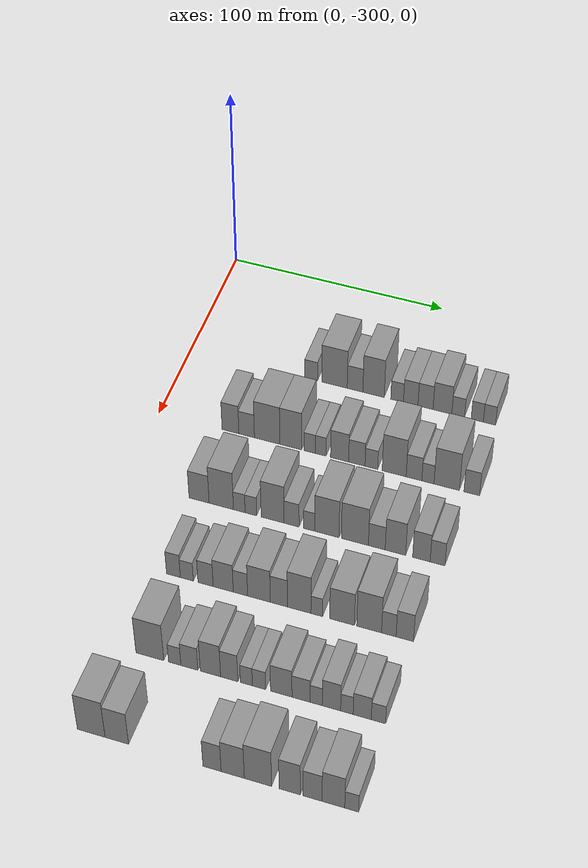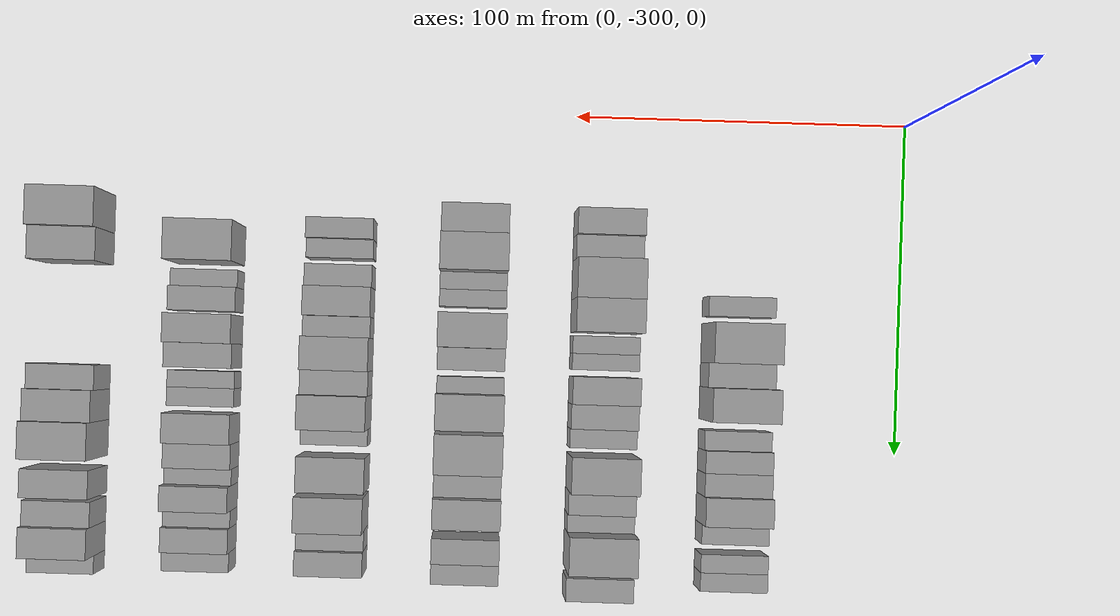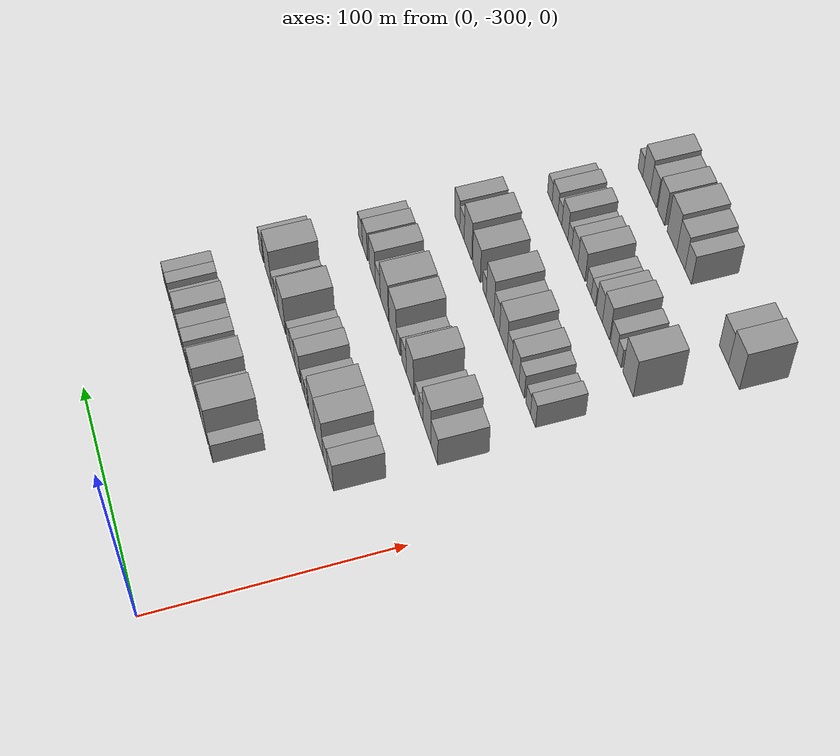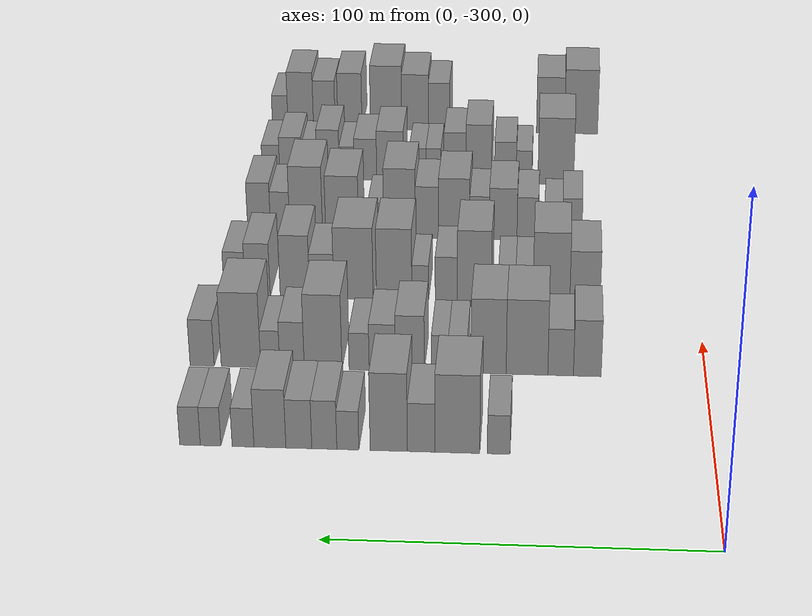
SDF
<sdf version="1.6">
 <world name="default">
  <model name="building_41">
   <static>1</static>
   <pose>50.0000 -243.2245 0 0.000000 0.000000 0.000000</pose>
   <link name="link">
    <pose>0 0 6.00 0 0 0</pose>
    <collision name="collision"><geometry><box><size>20.0000 5.9656 12.0000</size></box></geometry></collision>
    <visual name="visual">
     <cast_shadows>0</cast_shadows>
     <geometry><box><size>20.0000 5.9656 12.0000</size></box></geometry>
     <material>
      <script>
       <uri>model://grey_wall/materials/scripts</uri>
       <uri>model://grey_wall/materials/textures</uri>
       <name>vrc/grey_wall</name>
      </script>
     </material>
    </visual>
   </link>
  </model>
  <model name="building_42">
   <static>1</static>
   <pose>50.0000 -232.3315 0 0.000000 0.000000 0.000000</pose>
   <link name="link">
    <pose>0 0 12.00 0 0 0</pose>
    <collision name="collision"><geometry><box><size>20.0000 11.8202 24.0000</size></box></geometry></collision>
    <visual name="visual">
     <cast_shadows>0</cast_shadows>
     <geometry><box><size>20.0000 11.8202 24.0000</size></box></geometry>
     <material>
      <script>
       <uri>model://grey_wall/materials/scripts</uri>
       <uri>model://grey_wall/materials/textures</uri>
       <name>vrc/grey_wall</name>
      </script>
     </material>
    </visual>
   </link>
  </model>
  <model name="building_43">
   <static>1</static>
   <pose>50.0000 -222.7907 0 0.000000 0.000000 0.000000</pose>
   <link name="link">
    <pose>0 0 7.50 0 0 0</pose>
    <collision name="collision"><geometry><box><size>20.0000 7.2614 15.0000</size></box></geometry></collision>
    <visual name="visual">
     <cast_shadows>0</cast_shadows>
     <geometry><box><size>20.0000 7.2614 15.0000</size></box></geometry>
     <material>
      <script>
       <uri>model://grey_wall/materials/scripts</uri>
       <uri>model://grey_wall/materials/textures</uri>
       <name>vrc/grey_wall</name>
      </script>
     </material>
    </visual>
   </link>
  </model>
  <model name="building_44">
   <static>1</static>
   <pose>50.0000 -214.2294 0 0.000000 0.000000 0.000000</pose>
   <link name="link">
    <pose>0 0 12.00 0 0 0</pose>
    <collision name="collision"><geometry><box><size>20.0000 9.8612 24.0000</size></box></geometry></collision>
    <visual name="visual">
     <cast_shadows>0</cast_shadows>
     <geometry><box><size>20.0000 9.8612 24.0000</size></box></geometry>
     <material>
      <script>
       <uri>model://grey_wall/materials/scripts</uri>
       <uri>model://grey_wall/materials/textures</uri>
       <name>vrc/grey_wall</name>
      </script>
     </material>
    </visual>
   </link>
  </model>
  <model name="building_45">
   <static>1</static>
   <pose>50.0000 -203.3863 0 0.000000 0.000000 0.000000</pose>
   <link name="link">
    <pose>0 0 6.00 0 0 0</pose>
    <collision name="collision"><geometry><box><size>20.0000 5.8248 12.0000</size></box></geometry></collision>
    <visual name="visual">
     <cast_shadows>0</cast_shadows>
     <geometry><box><size>20.0000 5.8248 12.0000</size></box></geometry>
     <material>
      <script>
       <uri>model://grey_wall/materials/scripts</uri>
       <uri>model://grey_wall/materials/textures</uri>
       <name>vrc/grey_wall</name>
      </script>
     </material>
    </visual>
   </link>
  </model>
  <model name="building_46">
   <static>1</static>
   <pose>50.0000 -197.1510 0 0.000000 0.000000 0.000000</pose>
   <link name="link">
    <pose>0 0 7.50 0 0 0</pose>
    <collision name="collision"><geometry><box><size>20.0000 6.6458 15.0000</size></box></geometry></collision>
    <visual name="visual">
     <cast_shadows>0</cast_shadows>
     <geometry><box><size>20.0000 6.6458 15.0000</size></box></geometry>
     <material>
      <script>
       <uri>model://grey_wall/materials/scripts</uri>
       <uri>model://grey_wall/materials/textures</uri>
       <name>vrc/grey_wall</name>
      </script>
     </material>
    </visual>
   </link>
  </model>
  <model name="building_47">
   <static>1</static>
   <pose>50.0000 -190.3913 0 0.000000 0.000000 0.000000</pose>
   <link name="link">
    <pose>0 0 7.50 0 0 0</pose>
    <collision name="collision"><geometry><box><size>20.0000 6.8738 15.0000</size></box></geometry></collision>
    <visual name="visual">
     <cast_shadows>0</cast_shadows>
     <geometry><box><size>20.0000 6.8738 15.0000</size></box></geometry>
     <material>
      <script>
       <uri>model://grey_wall/materials/scripts</uri>
       <uri>model://grey_wall/materials/textures</uri>
       <name>vrc/grey_wall</name>
      </script>
     </material>
    </visual>
   </link>
  </model>
  <model name="building_48">
   <static>1</static>
   <pose>50.0000 -182.7068 0 0.000000 0.000000 0.000000</pose>
   <link name="link">
    <pose>0 0 9.00 0 0 0</pose>
    <collision name="collision"><geometry><box><size>20.0000 8.4952 18.0000</size></box></geometry></collision>
    <visual name="visual">
     <cast_shadows>0</cast_shadows>
     <geometry><box><size>20.0000 8.4952 18.0000</size></box></geometry>
     <material>
      <script>
       <uri>model://grey_wall/materials/scripts</uri>
       <uri>model://grey_wall/materials/textures</uri>
       <name>vrc/grey_wall</name>
      </script>
     </material>
    </visual>
   </link>
  </model>
  <model name="building_49">
   <static>1</static>
   <pose>50.0000 -175.5505 0 0.000000 0.000000 0.000000</pose>
   <link name="link">
    <pose>0 0 6.00 0 0 0</pose>
    <collision name="collision"><geometry><box><size>20.0000 5.8174 12.0000</size></box></geometry></collision>
    <visual name="visual">
     <cast_shadows>0</cast_shadows>
     <geometry><box><size>20.0000 5.8174 12.0000</size></box></geometry>
     <material>
      <script>
       <uri>model://grey_wall/materials/scripts</uri>
       <uri>model://grey_wall/materials/textures</uri>
       <name>vrc/grey_wall</name>
      </script>
     </material>
    </visual>
   </link>
  </model>
  <model name="building_50">
   <static>1</static>
   <pose>50.0000 -166.8964 0 0.000000 0.000000 0.000000</pose>
   <link name="link">
    <pose>0 0 6.00 0 0 0</pose>
    <collision name="collision"><geometry><box><size>20.0000 5.4906 12.0000</size></box></geometry></collision>
    <visual name="visual">
     <cast_shadows>0</cast_shadows>
     <geometry><box><size>20.0000 5.4906 12.0000</size></box></geometry>
     <material>
      <script>
       <uri>model://grey_wall/materials/scripts</uri>
       <uri>model://grey_wall/materials/textures</uri>
       <name>vrc/grey_wall</name>
      </script>
     </material>
    </visual>
   </link>
  </model>
  <model name="building_51">
   <static>1</static>
   <pose>50.0000 -161.4066 0 0.000000 0.000000 0.000000</pose>
   <link name="link">
    <pose>0 0 6.00 0 0 0</pose>
    <collision name="collision"><geometry><box><size>20.0000 5.4890 12.0000</size></box></geometry></collision>
    <visual name="visual">
     <cast_shadows>0</cast_shadows>
     <geometry><box><size>20.0000 5.4890 12.0000</size></box></geometry>
     <material>
      <script>
       <uri>model://grey_wall/materials/scripts</uri>
       <uri>model://grey_wall/materials/textures</uri>
       <name>vrc/grey_wall</name>
      </script>
     </material>
    </visual>
   </link>
  </model>
  <model name="building_180">
   <static>1</static>
   <pose>90.0000 -266.7955 0 0.000000 0.000000 0.000000</pose>
   <link name="link">
    <pose>0 0 9.00 0 0 0</pose>
    <collision name="collision"><geometry><box><size>20.0000 7.7450 18.0000</size></box></geometry></collision>
    <visual name="visual">
     <cast_shadows>0</cast_shadows>
     <geometry><box><size>20.0000 7.7450 18.0000</size></box></geometry>
     <material>
      <script>
       <uri>model://grey_wall/materials/scripts</uri>
       <uri>model://grey_wall/materials/textures</uri>
       <name>vrc/grey_wall</name>
      </script>
     </material>
    </visual>
   </link>
  </model>
  <model name="building_181">
   <static>1</static>
   <pose>90.0000 -259.3397 0 0.000000 0.000000 0.000000</pose>
   <link name="link">
    <pose>0 0 7.50 0 0 0</pose>
    <collision name="collision"><geometry><box><size>20.0000 7.1667 15.0000</size></box></geometry></collision>
    <visual name="visual">
     <cast_shadows>0</cast_shadows>
     <geometry><box><size>20.0000 7.1667 15.0000</size></box></geometry>
     <material>
      <script>
       <uri>model://grey_wall/materials/scripts</uri>
       <uri>model://grey_wall/materials/textures</uri>
       <name>vrc/grey_wall</name>
      </script>
     </material>
    </visual>
   </link>
  </model>
  <model name="building_182">
   <static>1</static>
   <pose>90.0000 -249.9329 0 0.000000 0.000000 0.000000</pose>
   <link name="link">
    <pose>0 0 12.00 0 0 0</pose>
    <collision name="collision"><geometry><box><size>20.0000 11.6470 24.0000</size></box></geometry></collision>
    <visual name="visual">
     <cast_shadows>0</cast_shadows>
     <geometry><box><size>20.0000 11.6470 24.0000</size></box></geometry>
     <material>
      <script>
       <uri>model://grey_wall/materials/scripts</uri>
       <uri>model://grey_wall/materials/textures</uri>
       <name>vrc/grey_wall</name>
      </script>
     </material>
    </visual>
   </link>
  </model>
  <model name="building_183">
   <static>1</static>
   <pose>90.0000 -239.1637 0 0.000000 0.000000 0.000000</pose>
   <link name="link">
    <pose>0 0 12.00 0 0 0</pose>
    <collision name="collision"><geometry><box><size>20.0000 9.8913 24.0000</size></box></geometry></collision>
    <visual name="visual">
     <cast_shadows>0</cast_shadows>
     <geometry><box><size>20.0000 9.8913 24.0000</size></box></geometry>
     <material>
      <script>
       <uri>model://grey_wall/materials/scripts</uri>
       <uri>model://grey_wall/materials/textures</uri>
       <name>vrc/grey_wall</name>
      </script>
     </material>
    </visual>
   </link>
  </model>
  <model name="building_184">
   <static>1</static>
   <pose>90.0000 -230.5788 0 0.000000 0.000000 0.000000</pose>
   <link name="link">
    <pose>0 0 6.00 0 0 0</pose>
    <collision name="collision"><geometry><box><size>20.0000 5.2786 12.0000</size></box></geometry></collision>
    <visual name="visual">
     <cast_shadows>0</cast_shadows>
     <geometry><box><size>20.0000 5.2786 12.0000</size></box></geometry>
     <material>
      <script>
       <uri>model://grey_wall/materials/scripts</uri>
       <uri>model://grey_wall/materials/textures</uri>
       <name>vrc/grey_wall</name>
      </script>
     </material>
    </visual>
   </link>
  </model>
  <model name="building_185">
   <static>1</static>
   <pose>90.0000 -225.5299 0 0.000000 0.000000 0.000000</pose>
   <link name="link">
    <pose>0 0 6.00 0 0 0</pose>
    <collision name="collision"><geometry><box><size>20.0000 4.8191 12.0000</size></box></geometry></collision>
    <visual name="visual">
     <cast_shadows>0</cast_shadows>
     <geometry><box><size>20.0000 4.8191 12.0000</size></box></geometry>
     <material>
      <script>
       <uri>model://grey_wall/materials/scripts</uri>
       <uri>model://grey_wall/materials/textures</uri>
       <name>vrc/grey_wall</name>
      </script>
     </material>
    </visual>
   </link>
  </model>
  <model name="building_186">
   <static>1</static>
   <pose>90.0000 -217.0432 0 0.000000 0.000000 0.000000</pose>
   <link name="link">
    <pose>0 0 9.00 0 0 0</pose>
    <collision name="collision"><geometry><box><size>20.0000 8.1545 18.0000</size></box></geometry></collision>
    <visual name="visual">
     <cast_shadows>0</cast_shadows>
     <geometry><box><size>20.0000 8.1545 18.0000</size></box></geometry>
     <material>
      <script>
       <uri>model://grey_wall/materials/scripts</uri>
       <uri>model://grey_wall/materials/textures</uri>
       <name>vrc/grey_wall</name>
      </script>
     </material>
    </visual>
   </link>
  </model>
  <model name="building_187">
   <static>1</static>
   <pose>90.0000 -209.2895 0 0.000000 0.000000 0.000000</pose>
   <link name="link">
    <pose>0 0 7.50 0 0 0</pose>
    <collision name="collision"><geometry><box><size>20.0000 7.3528 15.0000</size></box></geometry></collision>
    <visual name="visual">
     <cast_shadows>0</cast_shadows>
     <geometry><box><size>20.0000 7.3528 15.0000</size></box></geometry>
     <material>
      <script>
       <uri>model://grey_wall/materials/scripts</uri>
       <uri>model://grey_wall/materials/textures</uri>
       <name>vrc/grey_wall</name>
      </script>
     </material>
    </visual>
   </link>
  </model>
  <model name="building_188">
   <static>1</static>
   <pose>90.0000 -202.7772 0 0.000000 0.000000 0.000000</pose>
   <link name="link">
    <pose>0 0 6.00 0 0 0</pose>
    <collision name="collision"><geometry><box><size>20.0000 5.6718 12.0000</size></box></geometry></collision>
    <visual name="visual">
     <cast_shadows>0</cast_shadows>
     <geometry><box><size>20.0000 5.6718 12.0000</size></box></geometry>
     <material>
      <script>
       <uri>model://grey_wall/materials/scripts</uri>
       <uri>model://grey_wall/materials/textures</uri>
       <name>vrc/grey_wall</name>
      </script>
     </material>
    </visual>
   </link>
  </model>
  <model name="building_189">
   <static>1</static>
   <pose>90.0000 -192.6108 0 0.000000 0.000000 0.000000</pose>
   <link name="link">
    <pose>0 0 12.00 0 0 0</pose>
    <collision name="collision"><geometry><box><size>20.0000 10.6610 24.0000</size></box></geometry></collision>
    <visual name="visual">
     <cast_shadows>0</cast_shadows>
     <geometry><box><size>20.0000 10.6610 24.0000</size></box></geometry>
     <material>
      <script>
       <uri>model://grey_wall/materials/scripts</uri>
       <uri>model://grey_wall/materials/textures</uri>
       <name>vrc/grey_wall</name>
      </script>
     </material>
    </visual>
   </link>
  </model>
  <model name="building_190">
   <static>1</static>
   <pose>90.0000 -183.8102 0 0.000000 0.000000 0.000000</pose>
   <link name="link">
    <pose>0 0 7.50 0 0 0</pose>
    <collision name="collision"><geometry><box><size>20.0000 6.9402 15.0000</size></box></geometry></collision>
    <visual name="visual">
     <cast_shadows>0</cast_shadows>
     <geometry><box><size>20.0000 6.9402 15.0000</size></box></geometry>
     <material>
      <script>
       <uri>model://grey_wall/materials/scripts</uri>
       <uri>model://grey_wall/materials/textures</uri>
       <name>vrc/grey_wall</name>
      </script>
     </material>
    </visual>
   </link>
  </model>
  <model name="building_191">
   <static>1</static>
   <pose>90.0000 -177.6472 0 0.000000 0.000000 0.000000</pose>
   <link name="link">
    <pose>0 0 6.00 0 0 0</pose>
    <collision name="collision"><geometry><box><size>20.0000 5.3858 12.0000</size></box></geometry></collision>
    <visual name="visual">
     <cast_shadows>0</cast_shadows>
     <geometry><box><size>20.0000 5.3858 12.0000</size></box></geometry>
     <material>
      <script>
       <uri>model://grey_wall/materials/scripts</uri>
       <uri>model://grey_wall/materials/textures</uri>
       <name>vrc/grey_wall</name>
      </script>
     </material>
    </visual>
   </link>
  </model>
  <model name="building_192">
   <static>1</static>
   <pose>90.0000 -169.3589 0 0.000000 0.000000 0.000000</pose>
   <link name="link">
    <pose>0 0 12.00 0 0 0</pose>
    <collision name="collision"><geometry><box><size>20.0000 11.1908 24.0000</size></box></geometry></collision>
    <visual name="visual">
     <cast_shadows>0</cast_shadows>
     <geometry><box><size>20.0000 11.1908 24.0000</size></box></geometry>
     <material>
      <script>
       <uri>model://grey_wall/materials/scripts</uri>
       <uri>model://grey_wall/materials/textures</uri>
       <name>vrc/grey_wall</name>
      </script>
     </material>
    </visual>
   </link>
  </model>
  <model name="building_193">
   <static>1</static>
   <pose>90.0000 -158.3385 0 0.000000 0.000000 0.000000</pose>
   <link name="link">
    <pose>0 0 7.50 0 0 0</pose>
    <collision name="collision"><geometry><box><size>20.0000 6.8500 15.0000</size></box></geometry></collision>
    <visual name="visual">
     <cast_shadows>0</cast_shadows>
     <geometry><box><size>20.0000 6.8500 15.0000</size></box></geometry>
     <material>
      <script>
       <uri>model://grey_wall/materials/scripts</uri>
       <uri>model://grey_wall/materials/textures</uri>
       <name>vrc/grey_wall</name>
      </script>
     </material>
    </visual>
   </link>
  </model>
  <model name="building_321">
   <static>1</static>
   <pose>130.0000 -266.3626 0 0.000000 0.000000 0.000000</pose>
   <link name="link">
    <pose>0 0 9.00 0 0 0</pose>
    <collision name="collision"><geometry><box><size>20.0000 8.9956 18.0000</size></box></geometry></collision>
    <visual name="visual">
     <cast_shadows>0</cast_shadows>
     <geometry><box><size>20.0000 8.9956 18.0000</size></box></geometry>
     <material>
      <script>
       <uri>model://grey_wall/materials/scripts</uri>
       <uri>model://grey_wall/materials/textures</uri>
       <name>vrc/grey_wall</name>
      </script>
     </material>
    </visual>
   </link>
  </model>
  <model name="building_322">
   <static>1</static>
   <pose>130.0000 -256.4152 0 0.000000 0.000000 0.000000</pose>
   <link name="link">
    <pose>0 0 12.00 0 0 0</pose>
    <collision name="collision"><geometry><box><size>20.0000 10.8993 24.0000</size></box></geometry></collision>
    <visual name="visual">
     <cast_shadows>0</cast_shadows>
     <geometry><box><size>20.0000 10.8993 24.0000</size></box></geometry>
     <material>
      <script>
       <uri>model://grey_wall/materials/scripts</uri>
       <uri>model://grey_wall/materials/textures</uri>
       <name>vrc/grey_wall</name>
      </script>
     </material>
    </visual>
   </link>
  </model>
  <model name="building_323">
   <static>1</static>
   <pose>130.0000 -248.3699 0 0.000000 0.000000 0.000000</pose>
   <link name="link">
    <pose>0 0 6.00 0 0 0</pose>
    <collision name="collision"><geometry><box><size>20.0000 5.1913 12.0000</size></box></geometry></collision>
    <visual name="visual">
     <cast_shadows>0</cast_shadows>
     <geometry><box><size>20.0000 5.1913 12.0000</size></box></geometry>
     <material>
      <script>
       <uri>model://grey_wall/materials/scripts</uri>
       <uri>model://grey_wall/materials/textures</uri>
       <name>vrc/grey_wall</name>
      </script>
     </material>
    </visual>
   </link>
  </model>
  <model name="building_324">
   <static>1</static>
   <pose>130.0000 -243.2069 0 0.000000 0.000000 0.000000</pose>
   <link name="link">
    <pose>0 0 6.00 0 0 0</pose>
    <collision name="collision"><geometry><box><size>20.0000 5.1347 12.0000</size></box></geometry></collision>
    <visual name="visual">
     <cast_shadows>0</cast_shadows>
     <geometry><box><size>20.0000 5.1347 12.0000</size></box></geometry>
     <material>
      <script>
       <uri>model://grey_wall/materials/scripts</uri>
       <uri>model://grey_wall/materials/textures</uri>
       <name>vrc/grey_wall</name>
      </script>
     </material>
    </visual>
   </link>
  </model>
  <model name="building_325">
   <static>1</static>
   <pose>130.0000 -233.5717 0 0.000000 0.000000 0.000000</pose>
   <link name="link">
    <pose>0 0 12.00 0 0 0</pose>
    <collision name="collision"><geometry><box><size>20.0000 10.1357 24.0000</size></box></geometry></collision>
    <visual name="visual">
     <cast_shadows>0</cast_shadows>
     <geometry><box><size>20.0000 10.1357 24.0000</size></box></geometry>
     <material>
      <script>
       <uri>model://grey_wall/materials/scripts</uri>
       <uri>model://grey_wall/materials/textures</uri>
       <name>vrc/grey_wall</name>
      </script>
     </material>
    </visual>
   </link>
  </model>
  <model name="building_326">
   <static>1</static>
   <pose>130.0000 -225.1940 0 0.000000 0.000000 0.000000</pose>
   <link name="link">
    <pose>0 0 7.50 0 0 0</pose>
    <collision name="collision"><geometry><box><size>20.0000 6.6199 15.0000</size></box></geometry></collision>
    <visual name="visual">
     <cast_shadows>0</cast_shadows>
     <geometry><box><size>20.0000 6.6199 15.0000</size></box></geometry>
     <material>
      <script>
       <uri>model://grey_wall/materials/scripts</uri>
       <uri>model://grey_wall/materials/textures</uri>
       <name>vrc/grey_wall</name>
      </script>
     </material>
    </visual>
   </link>
  </model>
  <model name="building_327">
   <static>1</static>
   <pose>130.0000 -217.4072 0 0.000000 0.000000 0.000000</pose>
   <link name="link">
    <pose>0 0 6.00 0 0 0</pose>
    <collision name="collision"><geometry><box><size>20.0000 4.9537 12.0000</size></box></geometry></collision>
    <visual name="visual">
     <cast_shadows>0</cast_shadows>
     <geometry><box><size>20.0000 4.9537 12.0000</size></box></geometry>
     <material>
      <script>
       <uri>model://grey_wall/materials/scripts</uri>
       <uri>model://grey_wall/materials/textures</uri>
       <name>vrc/grey_wall</name>
      </script>
     </material>
    </visual>
   </link>
  </model>
  <model name="building_328">
   <static>1</static>
   <pose>130.0000 -209.6486 0 0.000000 0.000000 0.000000</pose>
   <link name="link">
    <pose>0 0 12.00 0 0 0</pose>
    <collision name="collision"><geometry><box><size>20.0000 10.5635 24.0000</size></box></geometry></collision>
    <visual name="visual">
     <cast_shadows>0</cast_shadows>
     <geometry><box><size>20.0000 10.5635 24.0000</size></box></geometry>
     <material>
      <script>
       <uri>model://grey_wall/materials/scripts</uri>
       <uri>model://grey_wall/materials/textures</uri>
       <name>vrc/grey_wall</name>
      </script>
     </material>
    </visual>
   </link>
  </model>
  <model name="building_329">
   <static>1</static>
   <pose>130.0000 -197.4934 0 0.000000 0.000000 0.000000</pose>
   <link name="link">
    <pose>0 0 12.00 0 0 0</pose>
    <collision name="collision"><geometry><box><size>20.0000 11.7470 24.0000</size></box></geometry></collision>
    <visual name="visual">
     <cast_shadows>0</cast_shadows>
     <geometry><box><size>20.0000 11.7470 24.0000</size></box></geometry>
     <material>
      <script>
       <uri>model://grey_wall/materials/scripts</uri>
       <uri>model://grey_wall/materials/textures</uri>
       <name>vrc/grey_wall</name>
      </script>
     </material>
    </visual>
   </link>
  </model>
  <model name="building_330">
   <static>1</static>
   <pose>130.0000 -187.9831 0 0.000000 0.000000 0.000000</pose>
   <link name="link">
    <pose>0 0 7.50 0 0 0</pose>
    <collision name="collision"><geometry><box><size>20.0000 7.2736 15.0000</size></box></geometry></collision>
    <visual name="visual">
     <cast_shadows>0</cast_shadows>
     <geometry><box><size>20.0000 7.2736 15.0000</size></box></geometry>
     <material>
      <script>
       <uri>model://grey_wall/materials/scripts</uri>
       <uri>model://grey_wall/materials/textures</uri>
       <name>vrc/grey_wall</name>
      </script>
     </material>
    </visual>
   </link>
  </model>
  <model name="building_331">
   <static>1</static>
   <pose>130.0000 -179.9331 0 0.000000 0.000000 0.000000</pose>
   <link name="link">
    <pose>0 0 10.50 0 0 0</pose>
    <collision name="collision"><geometry><box><size>20.0000 8.8264 21.0000</size></box></geometry></collision>
    <visual name="visual">
     <cast_shadows>0</cast_shadows>
     <geometry><box><size>20.0000 8.8264 21.0000</size></box></geometry>
     <material>
      <script>
       <uri>model://grey_wall/materials/scripts</uri>
       <uri>model://grey_wall/materials/textures</uri>
       <name>vrc/grey_wall</name>
      </script>
     </material>
    </visual>
   </link>
  </model>
  <model name="building_332">
   <static>1</static>
   <pose>130.0000 -168.7784 0 0.000000 0.000000 0.000000</pose>
   <link name="link">
    <pose>0 0 9.00 0 0 0</pose>
    <collision name="collision"><geometry><box><size>20.0000 7.4831 18.0000</size></box></geometry></collision>
    <visual name="visual">
     <cast_shadows>0</cast_shadows>
     <geometry><box><size>20.0000 7.4831 18.0000</size></box></geometry>
     <material>
      <script>
       <uri>model://grey_wall/materials/scripts</uri>
       <uri>model://grey_wall/materials/textures</uri>
       <name>vrc/grey_wall</name>
      </script>
     </material>
    </visual>
   </link>
  </model>
  <model name="building_333">
   <static>1</static>
   <pose>130.0000 -161.8646 0 0.000000 0.000000 0.000000</pose>
   <link name="link">
    <pose>0 0 7.50 0 0 0</pose>
    <collision name="collision"><geometry><box><size>20.0000 6.3444 15.0000</size></box></geometry></collision>
    <visual name="visual">
     <cast_shadows>0</cast_shadows>
     <geometry><box><size>20.0000 6.3444 15.0000</size></box></geometry>
     <material>
      <script>
       <uri>model://grey_wall/materials/scripts</uri>
       <uri>model://grey_wall/materials/textures</uri>
       <name>vrc/grey_wall</name>
      </script>
     </material>
    </visual>
   </link>
  </model>
  <model name="building_460">
   <static>1</static>
   <pose>170.0000 -262.5869 0 0.000000 0.000000 0.000000</pose>
   <link name="link">
    <pose>0 0 7.50 0 0 0</pose>
    <collision name="collision"><geometry><box><size>20.0000 6.0507 15.0000</size></box></geometry></collision>
    <visual name="visual">
     <cast_shadows>0</cast_shadows>
     <geometry><box><size>20.0000 6.0507 15.0000</size></box></geometry>
     <material>
      <script>
       <uri>model://grey_wall/materials/scripts</uri>
       <uri>model://grey_wall/materials/textures</uri>
       <name>vrc/grey_wall</name>
      </script>
     </material>
    </visual>
   </link>
  </model>
  <model name="building_461">
   <static>1</static>
   <pose>170.0000 -256.7274 0 0.000000 0.000000 0.000000</pose>
   <link name="link">
    <pose>0 0 6.00 0 0 0</pose>
    <collision name="collision"><geometry><box><size>20.0000 5.6682 12.0000</size></box></geometry></collision>
    <visual name="visual">
     <cast_shadows>0</cast_shadows>
     <geometry><box><size>20.0000 5.6682 12.0000</size></box></geometry>
     <material>
      <script>
       <uri>model://grey_wall/materials/scripts</uri>
       <uri>model://grey_wall/materials/textures</uri>
       <name>vrc/grey_wall</name>
      </script>
     </material>
    </visual>
   </link>
  </model>
  <model name="building_462">
   <static>1</static>
   <pose>170.0000 -248.6005 0 0.000000 0.000000 0.000000</pose>
   <link name="link">
    <pose>0 0 7.50 0 0 0</pose>
    <collision name="collision"><geometry><box><size>20.0000 6.5857 15.0000</size></box></geometry></collision>
    <visual name="visual">
     <cast_shadows>0</cast_shadows>
     <geometry><box><size>20.0000 6.5857 15.0000</size></box></geometry>
     <material>
      <script>
       <uri>model://grey_wall/materials/scripts</uri>
       <uri>model://grey_wall/materials/textures</uri>
       <name>vrc/grey_wall</name>
      </script>
     </material>
    </visual>
   </link>
  </model>
  <model name="building_463">
   <static>1</static>
   <pose>170.0000 -240.9438 0 0.000000 0.000000 0.000000</pose>
   <link name="link">
    <pose>0 0 9.00 0 0 0</pose>
    <collision name="collision"><geometry><box><size>20.0000 8.7277 18.0000</size></box></geometry></collision>
    <visual name="visual">
     <cast_shadows>0</cast_shadows>
     <geometry><box><size>20.0000 8.7277 18.0000</size></box></geometry>
     <material>
      <script>
       <uri>model://grey_wall/materials/scripts</uri>
       <uri>model://grey_wall/materials/textures</uri>
       <name>vrc/grey_wall</name>
      </script>
     </material>
    </visual>
   </link>
  </model>
  <model name="building_464">
   <static>1</static>
   <pose>170.0000 -233.4917 0 0.000000 0.000000 0.000000</pose>
   <link name="link">
    <pose>0 0 7.50 0 0 0</pose>
    <collision name="collision"><geometry><box><size>20.0000 6.1766 15.0000</size></box></geometry></collision>
    <visual name="visual">
     <cast_shadows>0</cast_shadows>
     <geometry><box><size>20.0000 6.1766 15.0000</size></box></geometry>
     <material>
      <script>
       <uri>model://grey_wall/materials/scripts</uri>
       <uri>model://grey_wall/materials/textures</uri>
       <name>vrc/grey_wall</name>
      </script>
     </material>
    </visual>
   </link>
  </model>
  <model name="building_465">
   <static>1</static>
   <pose>170.0000 -225.5157 0 0.000000 0.000000 0.000000</pose>
   <link name="link">
    <pose>0 0 10.50 0 0 0</pose>
    <collision name="collision"><geometry><box><size>20.0000 9.7752 21.0000</size></box></geometry></collision>
    <visual name="visual">
     <cast_shadows>0</cast_shadows>
     <geometry><box><size>20.0000 9.7752 21.0000</size></box></geometry>
     <material>
      <script>
       <uri>model://grey_wall/materials/scripts</uri>
       <uri>model://grey_wall/materials/textures</uri>
       <name>vrc/grey_wall</name>
      </script>
     </material>
    </visual>
   </link>
  </model>
  <model name="building_466">
   <static>1</static>
   <pose>170.0000 -216.9889 0 0.000000 0.000000 0.000000</pose>
   <link name="link">
    <pose>0 0 9.00 0 0 0</pose>
    <collision name="collision"><geometry><box><size>20.0000 7.2783 18.0000</size></box></geometry></collision>
    <visual name="visual">
     <cast_shadows>0</cast_shadows>
     <geometry><box><size>20.0000 7.2783 18.0000</size></box></geometry>
     <material>
      <script>
       <uri>model://grey_wall/materials/scripts</uri>
       <uri>model://grey_wall/materials/textures</uri>
       <name>vrc/grey_wall</name>
      </script>
     </material>
    </visual>
   </link>
  </model>
  <model name="building_467">
   <static>1</static>
   <pose>170.0000 -208.3487 0 0.000000 0.000000 0.000000</pose>
   <link name="link">
    <pose>0 0 12.00 0 0 0</pose>
    <collision name="collision"><geometry><box><size>20.0000 10.0021 24.0000</size></box></geometry></collision>
    <visual name="visual">
     <cast_shadows>0</cast_shadows>
     <geometry><box><size>20.0000 10.0021 24.0000</size></box></geometry>
     <material>
      <script>
       <uri>model://grey_wall/materials/scripts</uri>
       <uri>model://grey_wall/materials/textures</uri>
       <name>vrc/grey_wall</name>
      </script>
     </material>
    </visual>
   </link>
  </model>
  <model name="building_468">
   <static>1</static>
   <pose>170.0000 -200.8693 0 0.000000 0.000000 0.000000</pose>
   <link name="link">
    <pose>0 0 6.00 0 0 0</pose>
    <collision name="collision"><geometry><box><size>20.0000 4.9569 12.0000</size></box></geometry></collision>
    <visual name="visual">
     <cast_shadows>0</cast_shadows>
     <geometry><box><size>20.0000 4.9569 12.0000</size></box></geometry>
     <material>
      <script>
       <uri>model://grey_wall/materials/scripts</uri>
       <uri>model://grey_wall/materials/textures</uri>
       <name>vrc/grey_wall</name>
      </script>
     </material>
    </visual>
   </link>
  </model>
  <model name="building_469">
   <static>1</static>
   <pose>170.0000 -190.1889 0 0.000000 0.000000 0.000000</pose>
   <link name="link">
    <pose>0 0 10.50 0 0 0</pose>
    <collision name="collision"><geometry><box><size>20.0000 10.4039 21.0000</size></box></geometry></collision>
    <visual name="visual">
     <cast_shadows>0</cast_shadows>
     <geometry><box><size>20.0000 10.4039 21.0000</size></box></geometry>
     <material>
      <script>
       <uri>model://grey_wall/materials/scripts</uri>
       <uri>model://grey_wall/materials/textures</uri>
       <name>vrc/grey_wall</name>
      </script>
     </material>
    </visual>
   </link>
  </model>
  <model name="building_470">
   <static>1</static>
   <pose>170.0000 -178.7944 0 0.000000 0.000000 0.000000</pose>
   <link name="link">
    <pose>0 0 12.00 0 0 0</pose>
    <collision name="collision"><geometry><box><size>20.0000 10.3849 24.0000</size></box></geometry></collision>
    <visual name="visual">
     <cast_shadows>0</cast_shadows>
     <geometry><box><size>20.0000 10.3849 24.0000</size></box></geometry>
     <material>
      <script>
       <uri>model://grey_wall/materials/scripts</uri>
       <uri>model://grey_wall/materials/textures</uri>
       <name>vrc/grey_wall</name>
      </script>
     </material>
    </visual>
   </link>
  </model>
  <model name="building_471">
   <static>1</static>
   <pose>170.0000 -170.5716 0 0.000000 0.000000 0.000000</pose>
   <link name="link">
    <pose>0 0 7.50 0 0 0</pose>
    <collision name="collision"><geometry><box><size>20.0000 6.0607 15.0000</size></box></geometry></collision>
    <visual name="visual">
     <cast_shadows>0</cast_shadows>
     <geometry><box><size>20.0000 6.0607 15.0000</size></box></geometry>
     <material>
      <script>
       <uri>model://grey_wall/materials/scripts</uri>
       <uri>model://grey_wall/materials/textures</uri>
       <name>vrc/grey_wall</name>
      </script>
     </material>
    </visual>
   </link>
  </model>
  <model name="building_472">
   <static>1</static>
   <pose>170.0000 -163.9079 0 0.000000 0.000000 0.000000</pose>
   <link name="link">
    <pose>0 0 9.00 0 0 0</pose>
    <collision name="collision"><geometry><box><size>20.0000 7.2668 18.0000</size></box></geometry></collision>
    <visual name="visual">
     <cast_shadows>0</cast_shadows>
     <geometry><box><size>20.0000 7.2668 18.0000</size></box></geometry>
     <material>
      <script>
       <uri>model://grey_wall/materials/scripts</uri>
       <uri>model://grey_wall/materials/textures</uri>
       <name>vrc/grey_wall</name>
      </script>
     </material>
    </visual>
   </link>
  </model>
  <model name="building_589">
   <static>1</static>
   <pose>210.0000 -257.2479 0 0.000000 0.000000 0.000000</pose>
   <link name="link">
    <pose>0 0 12.00 0 0 0</pose>
    <collision name="collision"><geometry><box><size>20.0000 11.8286 24.0000</size></box></geometry></collision>
    <visual name="visual">
     <cast_shadows>0</cast_shadows>
     <geometry><box><size>20.0000 11.8286 24.0000</size></box></geometry>
     <material>
      <script>
       <uri>model://grey_wall/materials/scripts</uri>
       <uri>model://grey_wall/materials/textures</uri>
       <name>vrc/grey_wall</name>
      </script>
     </material>
    </visual>
   </link>
  </model>
  <model name="building_590">
   <static>1</static>
   <pose>210.0000 -246.7299 0 0.000000 0.000000 0.000000</pose>
   <link name="link">
    <pose>0 0 6.00 0 0 0</pose>
    <collision name="collision"><geometry><box><size>20.0000 5.2073 12.0000</size></box></geometry></collision>
    <visual name="visual">
     <cast_shadows>0</cast_shadows>
     <geometry><box><size>20.0000 5.2073 12.0000</size></box></geometry>
     <material>
      <script>
       <uri>model://grey_wall/materials/scripts</uri>
       <uri>model://grey_wall/materials/textures</uri>
       <name>vrc/grey_wall</name>
      </script>
     </material>
    </visual>
   </link>
  </model>
  <model name="building_591">
   <static>1</static>
   <pose>210.0000 -240.5333 0 0.000000 0.000000 0.000000</pose>
   <link name="link">
    <pose>0 0 7.50 0 0 0</pose>
    <collision name="collision"><geometry><box><size>20.0000 7.1860 15.0000</size></box></geometry></collision>
    <visual name="visual">
     <cast_shadows>0</cast_shadows>
     <geometry><box><size>20.0000 7.1860 15.0000</size></box></geometry>
     <material>
      <script>
       <uri>model://grey_wall/materials/scripts</uri>
       <uri>model://grey_wall/materials/textures</uri>
       <name>vrc/grey_wall</name>
      </script>
     </material>
    </visual>
   </link>
  </model>
  <model name="building_592">
   <static>1</static>
   <pose>210.0000 -231.6875 0 0.000000 0.000000 0.000000</pose>
   <link name="link">
    <pose>0 0 10.50 0 0 0</pose>
    <collision name="collision"><geometry><box><size>20.0000 8.5055 21.0000</size></box></geometry></collision>
    <visual name="visual">
     <cast_shadows>0</cast_shadows>
     <geometry><box><size>20.0000 8.5055 21.0000</size></box></geometry>
     <material>
      <script>
       <uri>model://grey_wall/materials/scripts</uri>
       <uri>model://grey_wall/materials/textures</uri>
       <name>vrc/grey_wall</name>
      </script>
     </material>
    </visual>
   </link>
  </model>
  <model name="building_593">
   <static>1</static>
   <pose>210.0000 -223.8188 0 0.000000 0.000000 0.000000</pose>
   <link name="link">
    <pose>0 0 9.00 0 0 0</pose>
    <collision name="collision"><geometry><box><size>20.0000 7.2319 18.0000</size></box></geometry></collision>
    <visual name="visual">
     <cast_shadows>0</cast_shadows>
     <geometry><box><size>20.0000 7.2319 18.0000</size></box></geometry>
     <material>
      <script>
       <uri>model://grey_wall/materials/scripts</uri>
       <uri>model://grey_wall/materials/textures</uri>
       <name>vrc/grey_wall</name>
      </script>
     </material>
    </visual>
   </link>
  </model>
  <model name="building_594">
   <static>1</static>
   <pose>210.0000 -216.6959 0 0.000000 0.000000 0.000000</pose>
   <link name="link">
    <pose>0 0 6.00 0 0 0</pose>
    <collision name="collision"><geometry><box><size>20.0000 5.0139 12.0000</size></box></geometry></collision>
    <visual name="visual">
     <cast_shadows>0</cast_shadows>
     <geometry><box><size>20.0000 5.0139 12.0000</size></box></geometry>
     <material>
      <script>
       <uri>model://grey_wall/materials/scripts</uri>
       <uri>model://grey_wall/materials/textures</uri>
       <name>vrc/grey_wall</name>
      </script>
     </material>
    </visual>
   </link>
  </model>
  <model name="building_595">
   <static>1</static>
   <pose>210.0000 -211.4296 0 0.000000 0.000000 0.000000</pose>
   <link name="link">
    <pose>0 0 6.00 0 0 0</pose>
    <collision name="collision"><geometry><box><size>20.0000 5.5189 12.0000</size></box></geometry></collision>
    <visual name="visual">
     <cast_shadows>0</cast_shadows>
     <geometry><box><size>20.0000 5.5189 12.0000</size></box></geometry>
     <material>
      <script>
       <uri>model://grey_wall/materials/scripts</uri>
       <uri>model://grey_wall/materials/textures</uri>
       <name>vrc/grey_wall</name>
      </script>
     </material>
    </visual>
   </link>
  </model>
  <model name="building_596">
   <static>1</static>
   <pose>210.0000 -202.2479 0 0.000000 0.000000 0.000000</pose>
   <link name="link">
    <pose>0 0 9.00 0 0 0</pose>
    <collision name="collision"><geometry><box><size>20.0000 8.8446 18.0000</size></box></geometry></collision>
    <visual name="visual">
     <cast_shadows>0</cast_shadows>
     <geometry><box><size>20.0000 8.8446 18.0000</size></box></geometry>
     <material>
      <script>
       <uri>model://grey_wall/materials/scripts</uri>
       <uri>model://grey_wall/materials/textures</uri>
       <name>vrc/grey_wall</name>
      </script>
     </material>
    </visual>
   </link>
  </model>
  <model name="building_597">
   <static>1</static>
   <pose>210.0000 -194.0825 0 0.000000 0.000000 0.000000</pose>
   <link name="link">
    <pose>0 0 7.50 0 0 0</pose>
    <collision name="collision"><geometry><box><size>20.0000 7.4862 15.0000</size></box></geometry></collision>
    <visual name="visual">
     <cast_shadows>0</cast_shadows>
     <geometry><box><size>20.0000 7.4862 15.0000</size></box></geometry>
     <material>
      <script>
       <uri>model://grey_wall/materials/scripts</uri>
       <uri>model://grey_wall/materials/textures</uri>
       <name>vrc/grey_wall</name>
      </script>
     </material>
    </visual>
   </link>
  </model>
  <model name="building_598">
   <static>1</static>
   <pose>210.0000 -187.8631 0 0.000000 0.000000 0.000000</pose>
   <link name="link">
    <pose>0 0 6.00 0 0 0</pose>
    <collision name="collision"><geometry><box><size>20.0000 4.9526 12.0000</size></box></geometry></collision>
    <visual name="visual">
     <cast_shadows>0</cast_shadows>
     <geometry><box><size>20.0000 4.9526 12.0000</size></box></geometry>
     <material>
      <script>
       <uri>model://grey_wall/materials/scripts</uri>
       <uri>model://grey_wall/materials/textures</uri>
       <name>vrc/grey_wall</name>
      </script>
     </material>
    </visual>
   </link>
  </model>
  <model name="building_599">
   <static>1</static>
   <pose>210.0000 -181.6386 0 0.000000 0.000000 0.000000</pose>
   <link name="link">
    <pose>0 0 9.00 0 0 0</pose>
    <collision name="collision"><geometry><box><size>20.0000 7.4965 18.0000</size></box></geometry></collision>
    <visual name="visual">
     <cast_shadows>0</cast_shadows>
     <geometry><box><size>20.0000 7.4965 18.0000</size></box></geometry>
     <material>
      <script>
       <uri>model://grey_wall/materials/scripts</uri>
       <uri>model://grey_wall/materials/textures</uri>
       <name>vrc/grey_wall</name>
      </script>
     </material>
    </visual>
   </link>
  </model>
  <model name="building_600">
   <static>1</static>
   <pose>210.0000 -175.3336 0 0.000000 0.000000 0.000000</pose>
   <link name="link">
    <pose>0 0 6.00 0 0 0</pose>
    <collision name="collision"><geometry><box><size>20.0000 5.1136 12.0000</size></box></geometry></collision>
    <visual name="visual">
     <cast_shadows>0</cast_shadows>
     <geometry><box><size>20.0000 5.1136 12.0000</size></box></geometry>
     <material>
      <script>
       <uri>model://grey_wall/materials/scripts</uri>
       <uri>model://grey_wall/materials/textures</uri>
       <name>vrc/grey_wall</name>
      </script>
     </material>
    </visual>
   </link>
  </model>
  <model name="building_601">
   <static>1</static>
   <pose>210.0000 -169.1165 0 0.000000 0.000000 0.000000</pose>
   <link name="link">
    <pose>0 0 7.50 0 0 0</pose>
    <collision name="collision"><geometry><box><size>20.0000 7.3206 15.0000</size></box></geometry></collision>
    <visual name="visual">
     <cast_shadows>0</cast_shadows>
     <geometry><box><size>20.0000 7.3206 15.0000</size></box></geometry>
     <material>
      <script>
       <uri>model://grey_wall/materials/scripts</uri>
       <uri>model://grey_wall/materials/textures</uri>
       <name>vrc/grey_wall</name>
      </script>
     </material>
    </visual>
   </link>
  </model>
  <model name="building_602">
   <static>1</static>
   <pose>210.0000 -162.5438 0 0.000000 0.000000 0.000000</pose>
   <link name="link">
    <pose>0 0 6.00 0 0 0</pose>
    <collision name="collision"><geometry><box><size>20.0000 5.8247 12.0000</size></box></geometry></collision>
    <visual name="visual">
     <cast_shadows>0</cast_shadows>
     <geometry><box><size>20.0000 5.8247 12.0000</size></box></geometry>
     <material>
      <script>
       <uri>model://grey_wall/materials/scripts</uri>
       <uri>model://grey_wall/materials/textures</uri>
       <name>vrc/grey_wall</name>
      </script>
     </material>
    </visual>
   </link>
  </model>
  <model name="building_724">
   <static>1</static>
   <pose>250.0000 -265.7557 0 0.000000 0.000000 0.000000</pose>
   <link name="link">
    <pose>0 0 12.00 0 0 0</pose>
    <collision name="collision"><geometry><box><size>20.0000 11.5047 24.0000</size></box></geometry></collision>
    <visual name="visual">
     <cast_shadows>0</cast_shadows>
     <geometry><box><size>20.0000 11.5047 24.0000</size></box></geometry>
     <material>
      <script>
       <uri>model://grey_wall/materials/scripts</uri>
       <uri>model://grey_wall/materials/textures</uri>
       <name>vrc/grey_wall</name>
      </script>
     </material>
    </visual>
   </link>
  </model>
  <model name="building_725">
   <static>1</static>
   <pose>250.0000 -255.1533 0 0.000000 0.000000 0.000000</pose>
   <link name="link">
    <pose>0 0 10.50 0 0 0</pose>
    <collision name="collision"><geometry><box><size>20.0000 9.7001 21.0000</size></box></geometry></collision>
    <visual name="visual">
     <cast_shadows>0</cast_shadows>
     <geometry><box><size>20.0000 9.7001 21.0000</size></box></geometry>
     <material>
      <script>
       <uri>model://grey_wall/materials/scripts</uri>
       <uri>model://grey_wall/materials/textures</uri>
       <name>vrc/grey_wall</name>
      </script>
     </material>
    </visual>
   </link>
  </model>
  <model name="building_726">
   <static>1</static>
   <pose>250.0000 -216.2652 0 0.000000 0.000000 0.000000</pose>
   <link name="link">
    <pose>0 0 9.00 0 0 0</pose>
    <collision name="collision"><geometry><box><size>20.0000 7.3587 18.0000</size></box></geometry></collision>
    <visual name="visual">
     <cast_shadows>0</cast_shadows>
     <geometry><box><size>20.0000 7.3587 18.0000</size></box></geometry>
     <material>
      <script>
       <uri>model://grey_wall/materials/scripts</uri>
       <uri>model://grey_wall/materials/textures</uri>
       <name>vrc/grey_wall</name>
      </script>
     </material>
    </visual>
   </link>
  </model>
  <model name="building_727">
   <static>1</static>
   <pose>250.0000 -207.9243 0 0.000000 0.000000 0.000000</pose>
   <link name="link">
    <pose>0 0 10.50 0 0 0</pose>
    <collision name="collision"><geometry><box><size>20.0000 9.3231 21.0000</size></box></geometry></collision>
    <visual name="visual">
     <cast_shadows>0</cast_shadows>
     <geometry><box><size>20.0000 9.3231 21.0000</size></box></geometry>
     <material>
      <script>
       <uri>model://grey_wall/materials/scripts</uri>
       <uri>model://grey_wall/materials/textures</uri>
       <name>vrc/grey_wall</name>
      </script>
     </material>
    </visual>
   </link>
  </model>
  <model name="building_728">
   <static>1</static>
   <pose>250.0000 -197.7999 0 0.000000 0.000000 0.000000</pose>
   <link name="link">
    <pose>0 0 12.00 0 0 0</pose>
    <collision name="collision"><geometry><box><size>20.0000 10.9256 24.0000</size></box></geometry></collision>
    <visual name="visual">
     <cast_shadows>0</cast_shadows>
     <geometry><box><size>20.0000 10.9256 24.0000</size></box></geometry>
     <material>
      <script>
       <uri>model://grey_wall/materials/scripts</uri>
       <uri>model://grey_wall/materials/textures</uri>
       <name>vrc/grey_wall</name>
      </script>
     </material>
    </visual>
   </link>
  </model>
  <model name="building_729">
   <static>1</static>
   <pose>250.0000 -185.1196 0 0.000000 0.000000 0.000000</pose>
   <link name="link">
    <pose>0 0 10.50 0 0 0</pose>
    <collision name="collision"><geometry><box><size>20.0000 8.4349 21.0000</size></box></geometry></collision>
    <visual name="visual">
     <cast_shadows>0</cast_shadows>
     <geometry><box><size>20.0000 8.4349 21.0000</size></box></geometry>
     <material>
      <script>
       <uri>model://grey_wall/materials/scripts</uri>
       <uri>model://grey_wall/materials/textures</uri>
       <name>vrc/grey_wall</name>
      </script>
     </material>
    </visual>
   </link>
  </model>
  <model name="building_730">
   <static>1</static>
   <pose>250.0000 -176.1088 0 0.000000 0.000000 0.000000</pose>
   <link name="link">
    <pose>0 0 9.00 0 0 0</pose>
    <collision name="collision"><geometry><box><size>20.0000 7.5868 18.0000</size></box></geometry></collision>
    <visual name="visual">
     <cast_shadows>0</cast_shadows>
     <geometry><box><size>20.0000 7.5868 18.0000</size></box></geometry>
     <material>
      <script>
       <uri>model://grey_wall/materials/scripts</uri>
       <uri>model://grey_wall/materials/textures</uri>
       <name>vrc/grey_wall</name>
      </script>
     </material>
    </visual>
   </link>
  </model>
  <model name="building_731">
   <static>1</static>
   <pose>250.0000 -167.8354 0 0.000000 0.000000 0.000000</pose>
   <link name="link">
    <pose>0 0 10.50 0 0 0</pose>
    <collision name="collision"><geometry><box><size>20.0000 8.9598 21.0000</size></box></geometry></collision>
    <visual name="visual">
     <cast_shadows>0</cast_shadows>
     <geometry><box><size>20.0000 8.9598 21.0000</size></box></geometry>
     <material>
      <script>
       <uri>model://grey_wall/materials/scripts</uri>
       <uri>model://grey_wall/materials/textures</uri>
       <name>vrc/grey_wall</name>
      </script>
     </material>
    </visual>
   </link>
  </model>
  <model name="building_732">
   <static>1</static>
   <pose>250.0000 -160.6302 0 0.000000 0.000000 0.000000</pose>
   <link name="link">
    <pose>0 0 6.00 0 0 0</pose>
    <collision name="collision"><geometry><box><size>20.0000 5.4507 12.0000</size></box></geometry></collision>
    <visual name="visual">
     <cast_shadows>0</cast_shadows>
     <geometry><box><size>20.0000 5.4507 12.0000</size></box></geometry>
     <material>
      <script>
       <uri>model://grey_wall/materials/scripts</uri>
       <uri>model://grey_wall/materials/textures</uri>
       <name>vrc/grey_wall</name>
      </script>
     </material>
    </visual>
   </link>
  </model>
 </world>
</sdf>
